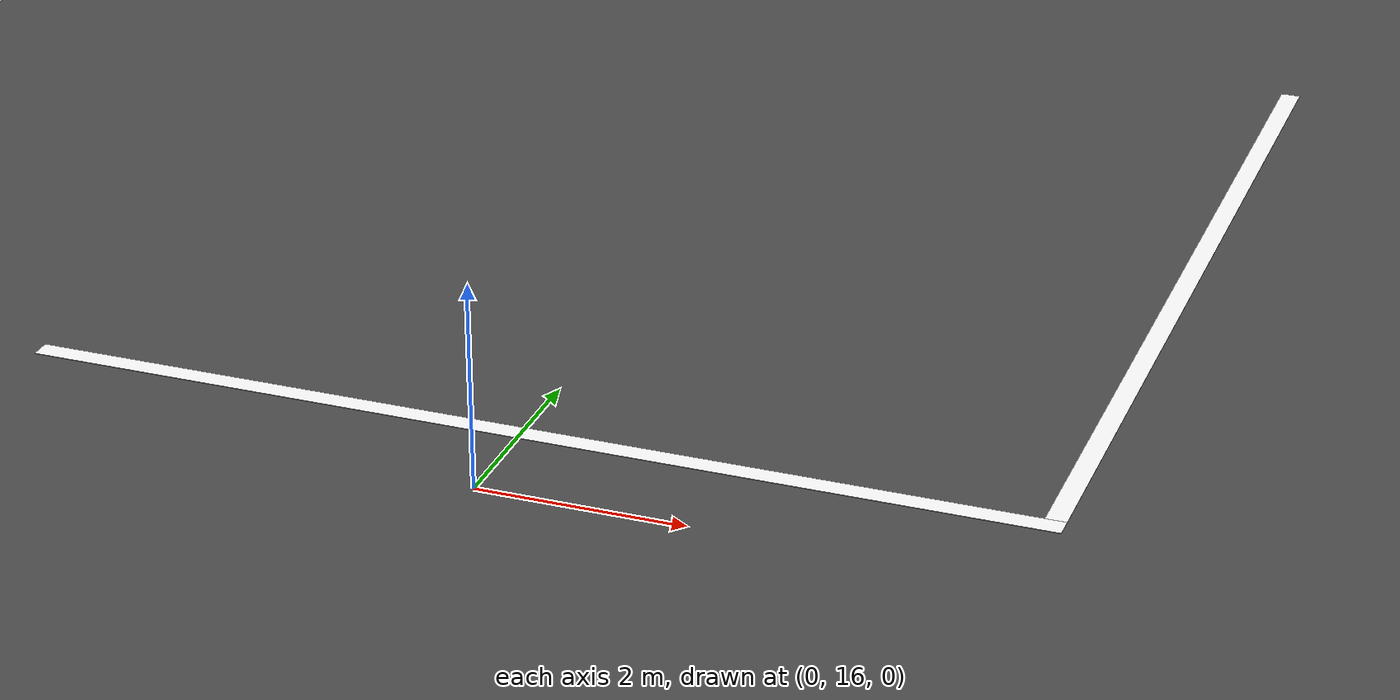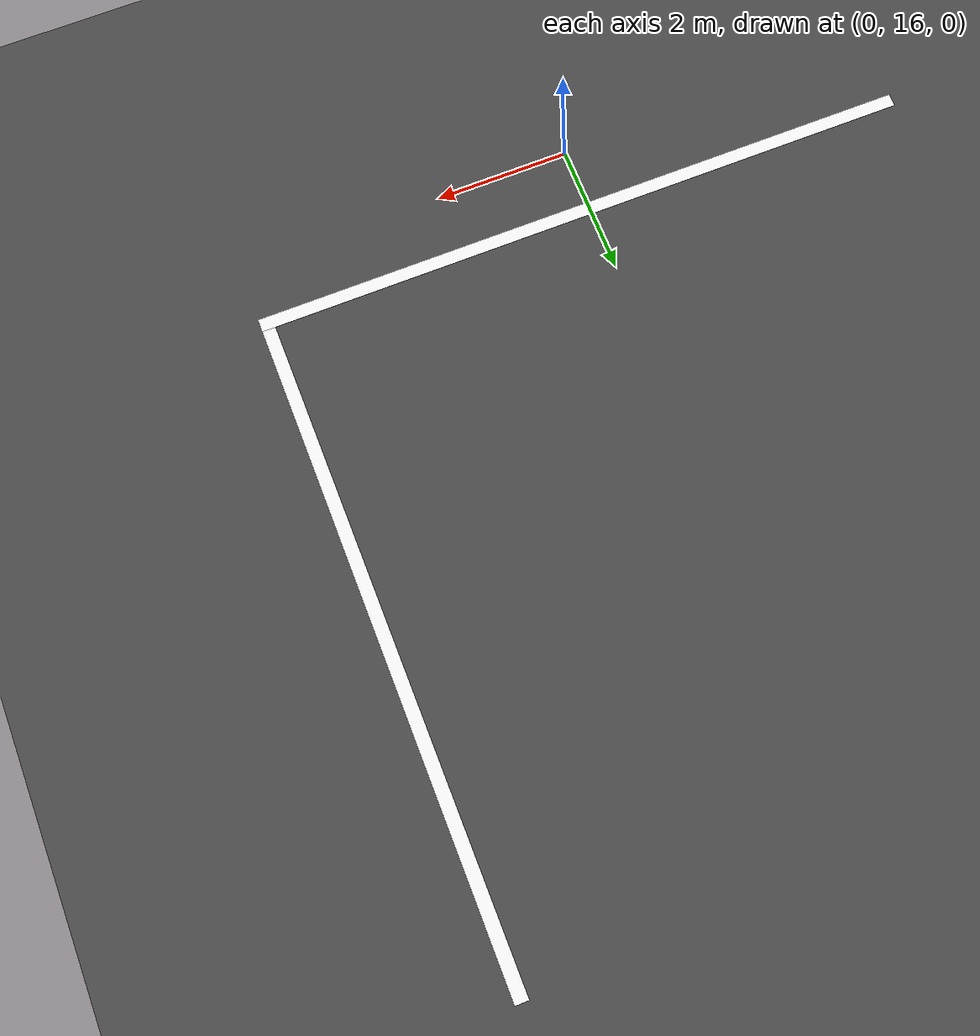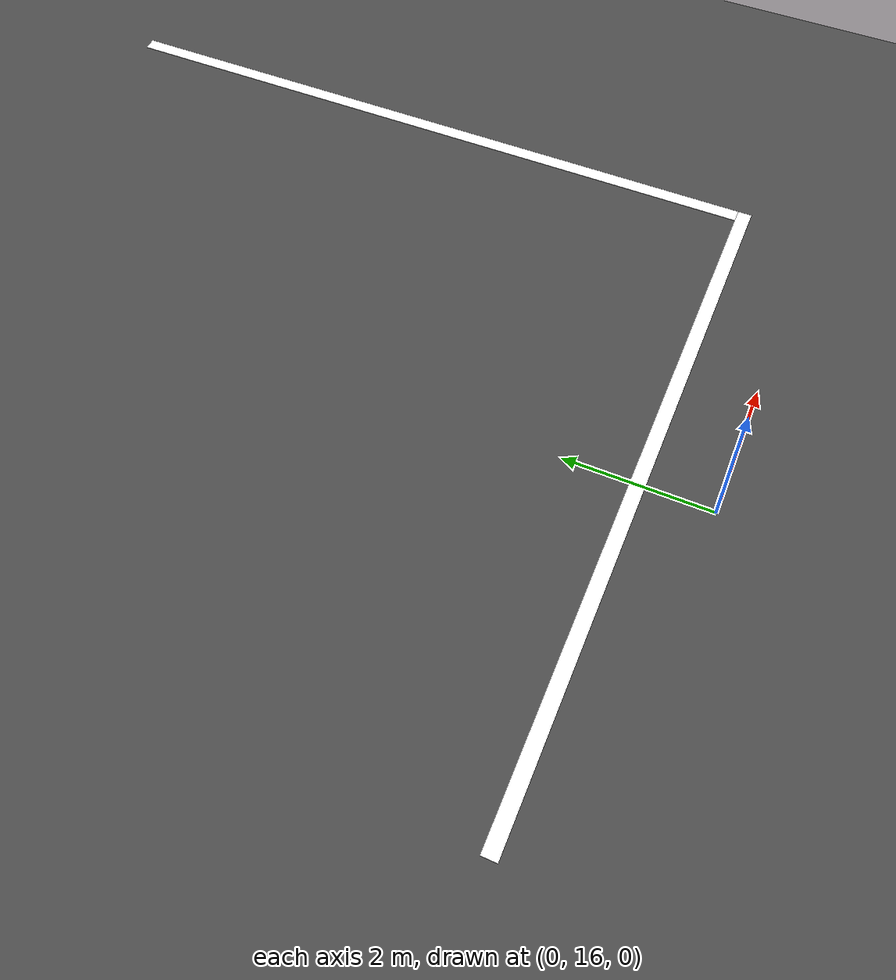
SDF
<?xml version="1.0" ?>
<sdf version='1.4'>
  <world name='default'>

    <physics type='ode'>
      <max_step_size>0.001</max_step_size>
      <real_time_factor>1</real_time_factor>
      <real_time_update_rate>1000</real_time_update_rate>
      <gravity>0 0 -9.8</gravity>
    </physics>

    <spherical_coordinates>
      <surface_model>EARTH_WGS84</surface_model>
      <latitude_deg>0</latitude_deg>
      <longitude_deg>0</longitude_deg>
      <elevation>0</elevation>
      <heading_deg>0</heading_deg>
    </spherical_coordinates>

    <!-- A global light source -->
   <scene>
      <sky>
        <clouds>
          <speed>12</speed>
        </clouds>
      </sky>
   </scene>

    <include>
      <uri>model://sun</uri>
    </include>

    <model name='asphalt_plane'>
      <static>1</static>
      <pose>0 22 0 0 0 0</pose>
      <link name='link'>
        <collision name='collision'>
          <geometry>
            <box>
              <size>50 60 0.1</size>
            </box>
          </geometry>
          <max_contacts>10</max_contacts>
          <surface>
            <contact>
              <ode/>
            </contact>
            <bounce/>
          </surface>
        </collision>
        <visual name='visual'>
          <cast_shadows>0</cast_shadows>
          <geometry>
            <box>
              <size>50 60 0.1</size>
            </box>
          </geometry>
          <material>
            <script>
              <uri>model://asphalt_plane/materials/scripts</uri>
              <uri>model://asphalt_plane/materials/textures</uri>
              <name>vrc/asphalt</name>
            </script>
          </material>
        </visual>
        <self_collide>0</self_collide>
        <kinematic>0</kinematic>
        <gravity>1</gravity>
      </link>
    </model>

    <model name='goal1'>
      <static>1</static>
      <pose>0.1 17.0 0.05 0 0 0</pose>
      <link name='link'>
        <visual name='visual'>
          <cast_shadows>0</cast_shadows>
          <geometry>
            <box>
              <size>10 0.2 0.01</size>
            </box>
          </geometry>
          <material>
            <ambient>1.0 1.0 1.0 1</ambient>
            <diffuse>1.0 1.0 1.0 1</diffuse>
            <specular>0.01 0.01 0.01 1</specular>
            <emissive>0 0 0 1</emissive>
          </material>
        </visual>
        <self_collide>0</self_collide>
        <kinematic>0</kinematic>
        <gravity>1</gravity>
      </link>
    </model>

    <model name='goal2'>
      <static>1</static>
      <pose>5.0 22.1 0.05 0 0 0</pose>
      <link name='link'>
        <visual name='visual'>
          <cast_shadows>0</cast_shadows>
          <geometry>
            <box>
              <size>0.2 10 0.01</size>
            </box>
          </geometry>
          <material>
            <ambient>1.0 1.0 1.0 1</ambient>
            <diffuse>1.0 1.0 1.0 1</diffuse>
            <specular>0.01 0.01 0.01 1</specular>
            <emissive>0 0 0 1</emissive>
          </material>
        </visual>
        <self_collide>0</self_collide>
        <kinematic>0</kinematic>
        <gravity>1</gravity>
      </link>
    </model>

    <plugin filename="libmbzirc2020_task2_rubble_plugin.so" name="rubble1">
      <bottom_right>8.0 40.0 0.0</bottom_right>
      <top_left>10.0 42.0 1.0</top_left>
      <brick_size>0.3 0.2 0.2</brick_size>
      <brick_color>1.0 0.0 0.0</brick_color>
      <brick_mass>0.381</brick_mass>
      <count>50</count>
    </plugin>

    <plugin filename="libmbzirc2020_task2_rubble_plugin.so" name="rubble2">
      <bottom_right>2.0 40.0 0.0</bottom_right>
      <top_left>4.0 42.0 1.0</top_left>
      <brick_size>0.6 0.2 0.2</brick_size>
      <brick_color>0.0 1.0 0.0</brick_color>
      <brick_mass>0.485</brick_mass>
      <count>50</count>
    </plugin>

    <plugin filename="libmbzirc2020_task2_rubble_plugin.so" name="rubble3">
      <bottom_right>-4.0 40 0.0</bottom_right>
      <top_left>-2.0 42.0 1.0</top_left>
      <brick_size>1.2 0.2 0.2</brick_size>
      <brick_color>0.0 0.0 1.0</brick_color>
      <brick_mass>0.907</brick_mass>
      <count>50</count>
    </plugin>

    <plugin filename="libmbzirc2020_task2_rubble_plugin.so" name="rubble4">
      <bottom_right>-10.0 40 0.0</bottom_right>
      <top_left>-8.0 42.0 1.0</top_left>
      <brick_size>1.8 0.2 0.2</brick_size>
      <brick_color>1.0 0.647 0.0</brick_color>
      <brick_mass>1.2</brick_mass>
      <count>50</count>
    </plugin>

  </world>
</sdf>
